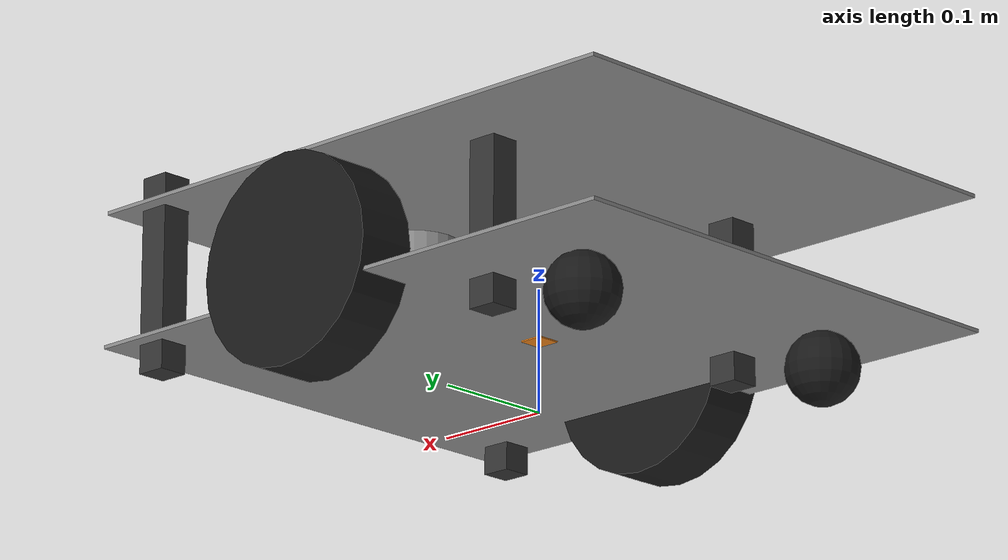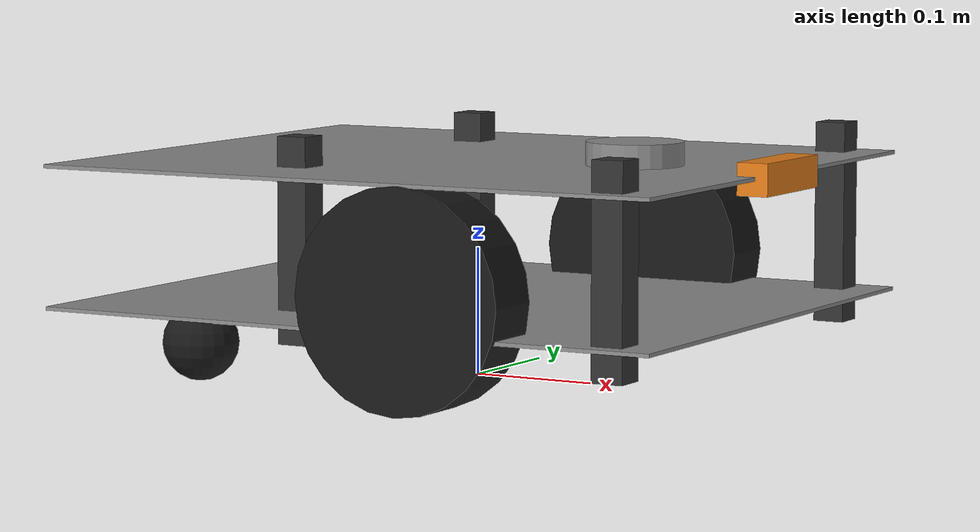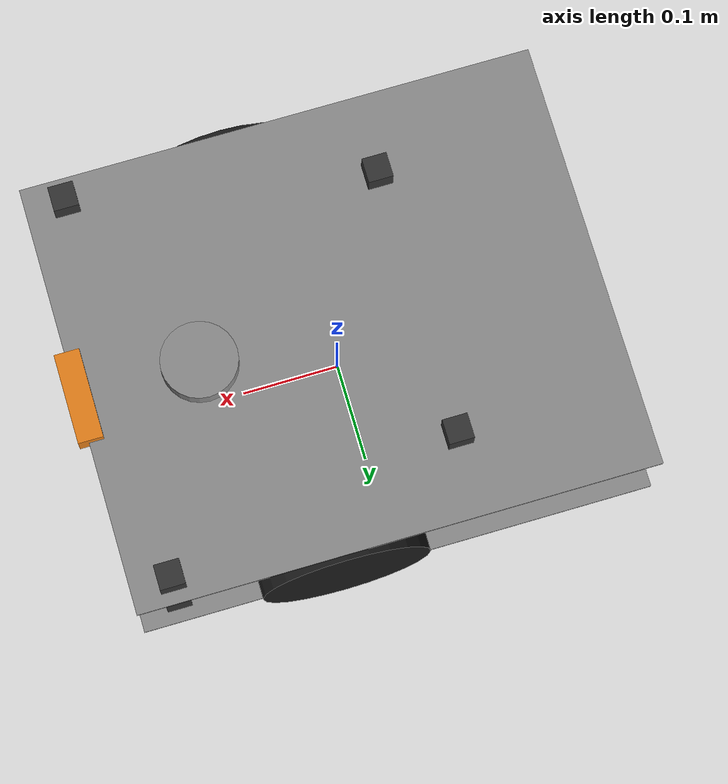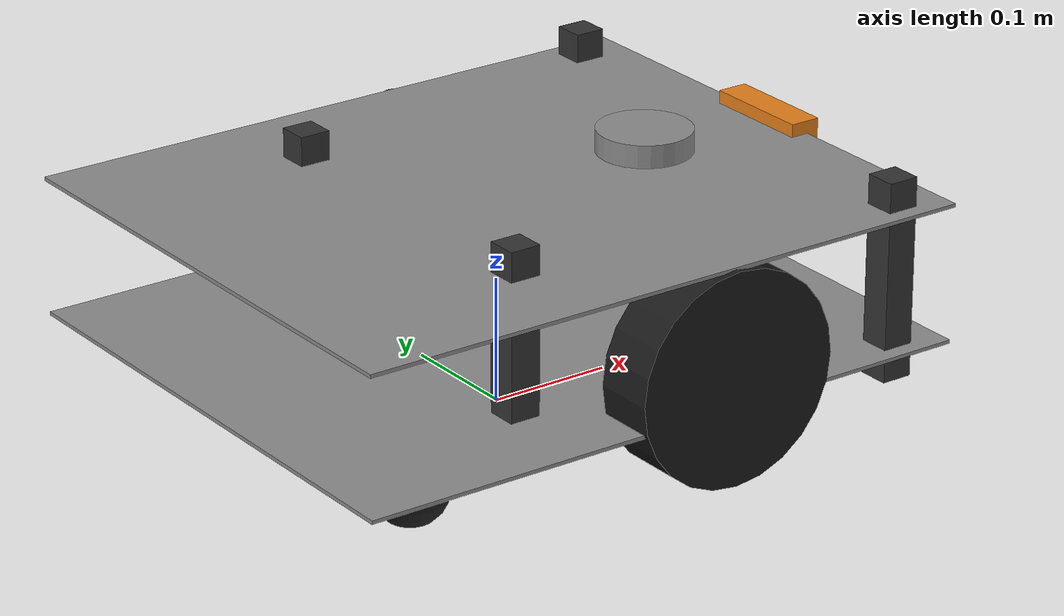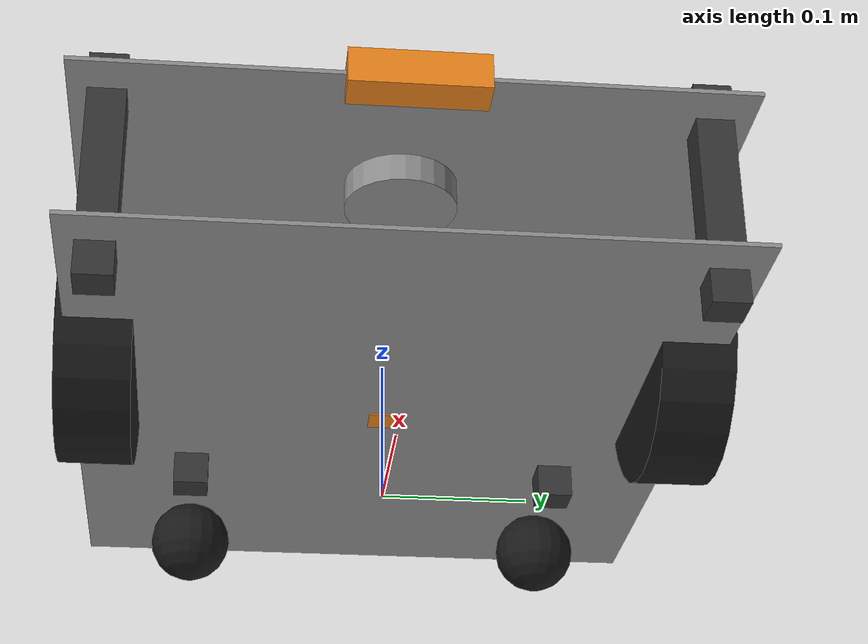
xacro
<?xml version="1.0"?>
<robot name="hub_motor_robot" xmlns:xacro="http://www.ros.org/wiki/xacro">

  <!-- == Body & plates == -->
  <xacro:property name="body_length"     value="0.520"/>
  <xacro:property name="body_width"      value="0.435"/>
  <xacro:property name="body_height"     value="0.175"/>
  <xacro:property name="plate_thickness" value="0.003"/>
  <xacro:property name="lower_plate_z"   value="0.060"/>
  <xacro:property name="plate_gap"       value="0.110"/>
  <xacro:property name="upper_plate_z"   value="${lower_plate_z + plate_gap}"/>
  <xacro:property name="plate_mass"      value="2.0"/>

  <!-- == Standoffs (plate spacers) == -->
  <xacro:property name="standoff_size"     value="0.025"/>
  <xacro:property name="standoff_length"   value="0.160"/>
  <xacro:property name="standoff_x_front"  value="0.220"/>
  <xacro:property name="standoff_y_front"  value="0.1925"/>
  <xacro:property name="standoff_x_rear"   value="-0.080"/>
  <xacro:property name="standoff_y_rear"   value="0.135"/>
  <xacro:property name="standoff_z"        value="${(lower_plate_z + upper_plate_z) / 2.0}"/>

  <!-- == Drive wheels == -->
  <xacro:property name="wheel_radius"     value="0.085"/>
  <xacro:property name="wheel_thickness"  value="0.050"/>
  <xacro:property name="wheel_mass"       value="1.5"/>
  <xacro:property name="wheel_x_offset"   value="0.055"/>
  <xacro:property name="wheel_separation" value="0.395"/>

  <!-- == Rear casters == -->
  <xacro:property name="caster_wheel_radius" value="0.030"/>
  <xacro:property name="caster_wheel_mass"   value="0.080"/>
  <xacro:property name="caster_x"            value="-0.160"/>
  <xacro:property name="caster_y"            value="0.135"/>
  <xacro:property name="caster_trail"        value="0.012"/>

  <!-- == Sensors == -->
  <xacro:property name="lidar_x"                  value="0.1375"/>
  <xacro:property name="lidar_radius"             value="0.038"/>
  <xacro:property name="lidar_height_dim"         value="0.041"/>
  <xacro:property name="lidar_mass"               value="0.190"/>
  <xacro:property name="lidar_top_above_lower"    value="0.130"/>
  <xacro:property name="lidar_z"
                   value="${lower_plate_z + lidar_top_above_lower - lidar_height_dim / 2.0}"/>

  <xacro:property name="camera_size_x" value="0.025"/>
  <xacro:property name="camera_size_y" value="0.090"/>
  <xacro:property name="camera_size_z" value="0.025"/>
  <xacro:property name="camera_x"      value="${lidar_x + 0.120}"/>

  <material name="chassis_grey">
    <color rgba="0.55 0.55 0.55 1.0"/>
  </material>
  <material name="wheel_black">
    <color rgba="0.1 0.1 0.1 1.0"/>
  </material>
  <material name="sensor_orange">
    <color rgba="0.9 0.5 0.1 1.0"/>
  </material>
  <material name="standoff_dark">
    <color rgba="0.2 0.2 0.2 1.0"/>
  </material>

  <!-- base_footprint: ground-projected origin, ties to odom via serial_bridge_node's TF -->
  <link name="base_footprint"/>

  <joint name="base_footprint_to_base_link" type="fixed">
    <parent link="base_footprint"/>
    <child link="base_link"/>
    <origin xyz="0 0 0" rpy="0 0 0"/>
  </joint>

  <!-- base_link: pure reference frame - the physical body is the two plates below -->
  <link name="base_link"/>

  <!-- == Chassis plates == -->
  <xacro:macro name="chassis_plate" params="name z">
    <link name="${name}">
      <visual>
        <geometry>
          <box size="${body_length} ${body_width} ${plate_thickness}"/>
        </geometry>
        <material name="chassis_grey"/>
      </visual>
      <collision>
        <geometry>
          <box size="${body_length} ${body_width} ${plate_thickness}"/>
        </geometry>
      </collision>
      <inertial>
        <mass value="${plate_mass}"/>
        <inertia ixx="0.04" ixy="0" ixz="0" iyy="0.06" iyz="0" izz="0.10"/>
      </inertial>
    </link>

    <joint name="base_link_to_${name}" type="fixed">
      <parent link="base_link"/>
      <child link="${name}"/>
      <origin xyz="0 0 ${z}" rpy="0 0 0"/>
    </joint>
  </xacro:macro>

  <xacro:chassis_plate name="lower_plate" z="${lower_plate_z}"/>
  <xacro:chassis_plate name="upper_plate" z="${upper_plate_z}"/>

  <!-- == Standoffs connecting the two plates == -->
  <xacro:macro name="standoff" params="name x y">
    <link name="standoff_${name}">
      <visual>
        <geometry>
          <box size="${standoff_size} ${standoff_size} ${standoff_length}"/>
        </geometry>
        <material name="standoff_dark"/>
      </visual>
    </link>

    <joint name="base_link_to_standoff_${name}" type="fixed">
      <parent link="base_link"/>
      <child link="standoff_${name}"/>
      <origin xyz="${x} ${y} ${standoff_z}" rpy="0 0 0"/>
    </joint>
  </xacro:macro>

  <xacro:standoff name="front_left"  x="${standoff_x_front}" y="${standoff_y_front}"/>
  <xacro:standoff name="front_right" x="${standoff_x_front}" y="${-standoff_y_front}"/>
  <xacro:standoff name="rear_left"   x="${standoff_x_rear}"  y="${standoff_y_rear}"/>
  <xacro:standoff name="rear_right"  x="${standoff_x_rear}"  y="${-standoff_y_rear}"/>

  <!-- == Drive wheels == -->
  <xacro:macro name="wheel" params="name y_offset">
    <link name="${name}_wheel">
      <visual>
        <origin xyz="0 0 0" rpy="1.5708 0 0"/>
        <geometry>
          <cylinder radius="${wheel_radius}" length="${wheel_thickness}"/>
        </geometry>
        <material name="wheel_black"/>
      </visual>
      <collision>
        <origin xyz="0 0 0" rpy="1.5708 0 0"/>
        <geometry>
          <cylinder radius="${wheel_radius}" length="${wheel_thickness}"/>
        </geometry>
      </collision>
      <inertial>
        <mass value="${wheel_mass}"/>
        <inertia ixx="0.002" ixy="0" ixz="0" iyy="0.002" iyz="0" izz="0.002"/>
      </inertial>
    </link>

    <joint name="base_link_to_${name}_wheel" type="continuous">
      <parent link="base_link"/>
      <child link="${name}_wheel"/>
      <origin xyz="${wheel_x_offset} ${y_offset} ${wheel_radius}" rpy="0 0 0"/>
      <axis xyz="0 1 0"/>
    </joint>
  </xacro:macro>

  <xacro:wheel name="left"  y_offset="${wheel_separation / 2.0}"/>
  <xacro:wheel name="right" y_offset="${-wheel_separation / 2.0}"/>

  <!-- == Rear casters (simplified as fixed balls - no swivel joint modeled) == -->
  <xacro:macro name="caster" params="name y">
    <link name="caster_${name}">
      <visual>
        <geometry>
          <sphere radius="${caster_wheel_radius}"/>
        </geometry>
        <material name="wheel_black"/>
      </visual>
      <collision>
        <geometry>
          <sphere radius="${caster_wheel_radius}"/>
        </geometry>
      </collision>
      <inertial>
        <mass value="${caster_wheel_mass}"/>
        <inertia ixx="0.0001" ixy="0" ixz="0" iyy="0.0001" iyz="0" izz="0.0001"/>
      </inertial>
    </link>

    <joint name="base_link_to_caster_${name}" type="fixed">
      <parent link="base_link"/>
      <child link="caster_${name}"/>
      <origin xyz="${caster_x - caster_trail} ${y} ${caster_wheel_radius}" rpy="0 0 0"/>
    </joint>
  </xacro:macro>

  <xacro:caster name="left"  y="${caster_y}"/>
  <xacro:caster name="right" y="${-caster_y}"/>

  <!-- == Lidar == -->
  <link name="laser_frame">
    <visual>
      <geometry>
        <cylinder radius="${lidar_radius}" length="${lidar_height_dim}"/>
      </geometry>
      <material name="chassis_grey"/>
    </visual>
    <inertial>
      <mass value="${lidar_mass}"/>
      <inertia ixx="0.00005" ixy="0" ixz="0" iyy="0.00005" iyz="0" izz="0.00005"/>
    </inertial>
  </link>

  <joint name="base_link_to_laser" type="fixed">
    <parent link="base_link"/>
    <child link="laser_frame"/>
    <origin xyz="${lidar_x} 0 ${lidar_z}" rpy="0 0 0"/>
  </joint>

  <!-- == Camera == -->
  <!-- Only x-offset (relative to lidar) was given; y/z are assumed centered
       and co-planar with the lidar mount until measured. -->
  <link name="camera_link">
    <visual>
      <geometry>
        <box size="${camera_size_x} ${camera_size_y} ${camera_size_z}"/>
      </geometry>
      <material name="sensor_orange"/>
    </visual>
  </link>

  <joint name="base_link_to_camera" type="fixed">
    <parent link="base_link"/>
    <child link="camera_link"/>
    <origin xyz="${camera_x} 0 ${lidar_z}" rpy="0 0 0"/>
  </joint>

  <!-- == IMU (MPU6050, physically wired to the ESP32's I2C pins) == -->
  <!-- Mounting position wasn't in the measurement sheet - placed on the
       lower plate centerline as a placeholder until measured. -->
  <link name="imu_link">
    <visual>
      <geometry>
        <box size="0.02 0.02 0.005"/>
      </geometry>
      <material name="sensor_orange"/>
    </visual>
  </link>

  <joint name="base_link_to_imu" type="fixed">
    <parent link="base_link"/>
    <child link="imu_link"/>
    <origin xyz="0 0 ${lower_plate_z}" rpy="0 0 0"/>
  </joint>

  <!-- Ultrasonic sensors intentionally omitted: not in use / not yet mounted. -->

</robot>
